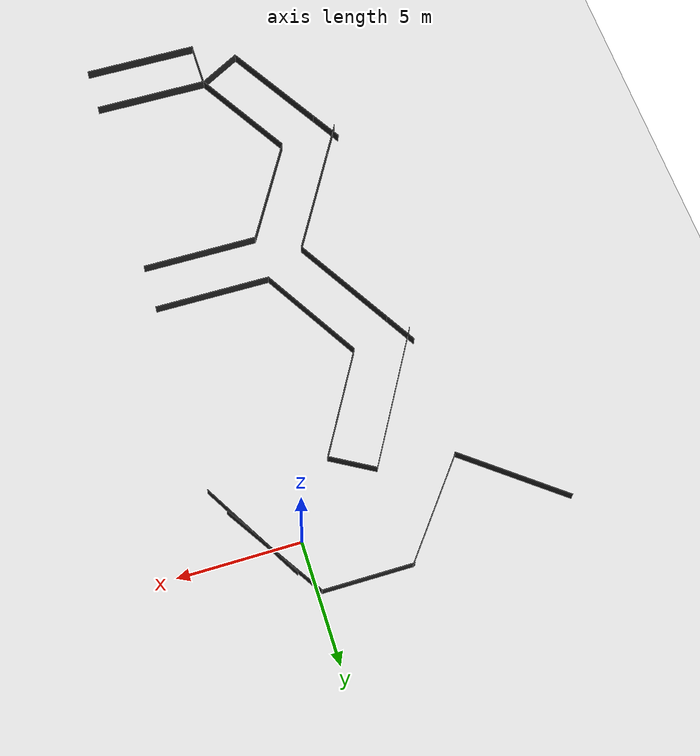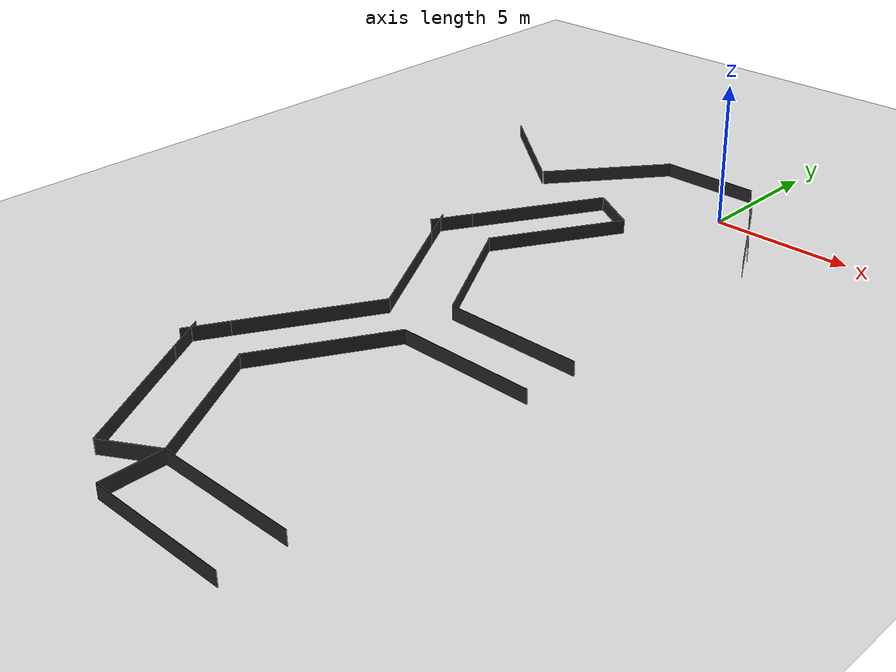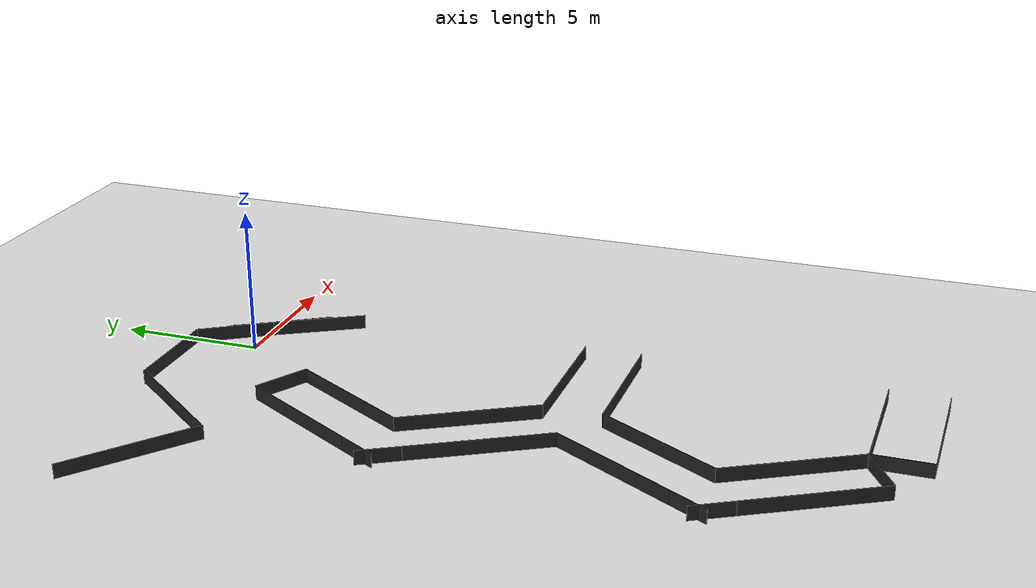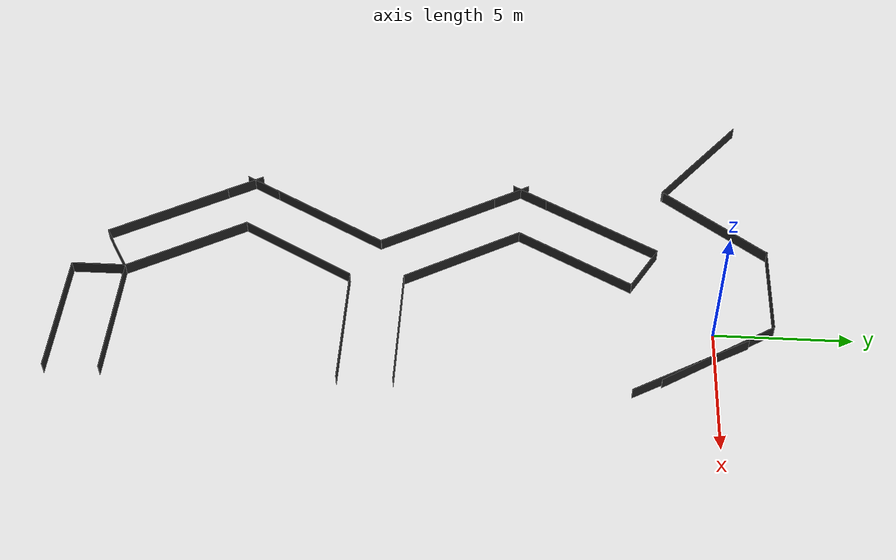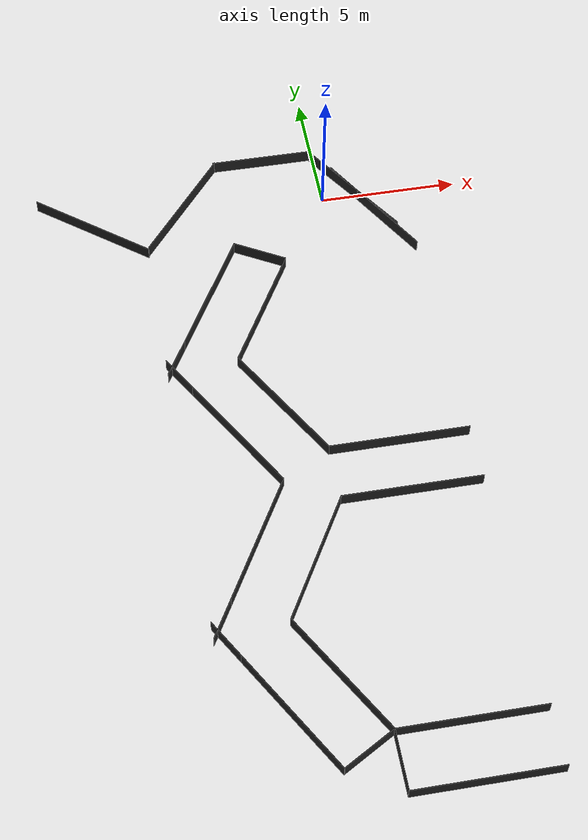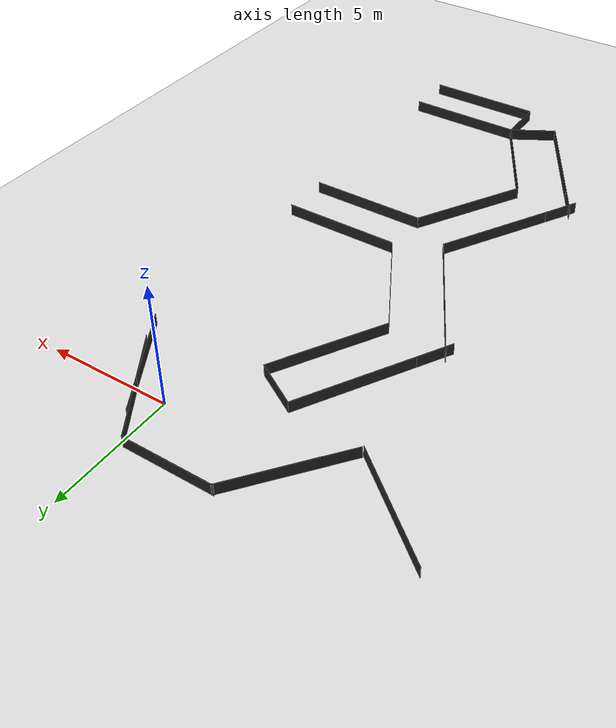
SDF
<sdf version="1.6">
 <world name="default">
  <model name="ground_plane">
   <static>1</static>
   <link name="link">
    <collision name="collision">
     <geometry><plane><normal>0 0 1</normal><size>100 100</size></plane></geometry>
     <surface><friction><ode><mu>100</mu><mu2>50</mu2></ode></friction></surface>
    </collision>
    <visual name="visual">
     <cast_shadows>0</cast_shadows>
     <geometry><plane><normal>0 0 1</normal><size>100 100</size></plane></geometry>
     <material>
      <script><uri>file://media/materials/scripts/gazebo.material</uri><name>Gazebo/White</name></script>
     </material>
    </visual>
   </link>
  </model>
  <model name="T_camber_2_2">
   <link name="link_clone_0_clone_clone">
    <inertial>
     <mass>1</mass>
     <inertia>
      <ixx>0.166667</ixx>
      <ixy>0</ixy>
      <ixz>0</ixz>
      <iyy>0.166667</iyy>
      <iyz>0</iyz>
      <izz>0.166667</izz>
     </inertia>
    </inertial>
    <pose>17.958 -12.4374 0 5e-06 -0 -2.0944</pose>
    <visual name="visual">
     <geometry><box><size>0.015 4.8453 0.5</size></box></geometry>
     <material>
      <script><name>Gazebo/FlatBlack</name><uri>file://media/materials/scripts/gazebo.material</uri></script>
      <shader type="pixel"><normal_map>__default__</normal_map></shader>
      <ambient>0.1 0.1 0.1 1</ambient>
      <diffuse>0.1 0.1 0.1 1</diffuse>
      <specular>0.01 0.01 0.01 1</specular>
      <emissive>0 0 0 1</emissive>
     </material>
    </visual>
    <visual name="visual_2">
     <geometry><box><size>0.015 4.8453 0.5</size></box></geometry>
     <material>
      <script><name>Gazebo/FlatBlack</name><uri>file://media/materials/scripts/gazebo.material</uri></script>
      <shader type="pixel"><normal_map>__default__</normal_map></shader>
      <ambient>0.1 0.1 0.1 1</ambient>
      <diffuse>0.1 0.1 0.1 1</diffuse>
      <specular>0.01 0.01 0.01 1</specular>
      <emissive>0 0 0 1</emissive>
     </material>
     <pose>2 0 0 0 -0 0</pose>
    </visual>
    <collision name="collision">
     <geometry><box><size>0.015 4.8453 0.5</size></box></geometry>
     <surface>
      <friction>
       <ode><mu>1</mu><mu2>1</mu2><fdir1>0 0 0</fdir1><slip1>0</slip1><slip2>0</slip2></ode>
       <torsional>
        <coefficient>1</coefficient>
        <patch_radius>0</patch_radius>
        <surface_radius>0</surface_radius>
        <use_patch_radius>1</use_patch_radius>
        <ode><slip>0</slip></ode>
       </torsional>
      </friction>
      <bounce><restitution_coefficient>0</restitution_coefficient><threshold>1e+06</threshold></bounce>
      <contact>
       <collide_without_contact>0</collide_without_contact>
       <collide_without_contact_bitmask>1</collide_without_contact_bitmask>
       <collide_bitmask>1</collide_bitmask>
       <ode>
        <soft_cfm>0</soft_cfm>
        <soft_erp>0.2</soft_erp>
        <kp>1e+13</kp>
        <kd>1</kd>
        <max_vel>0.01</max_vel>
        <min_depth>0</min_depth>
       </ode>
       <bullet>
        <split_impulse>1</split_impulse>
        <split_impulse_penetration_threshold>-0.01</split_impulse_penetration_threshold>
        <soft_cfm>0</soft_cfm>
        <soft_erp>0.2</soft_erp>
        <kp>1e+13</kp>
        <kd>1</kd>
       </bullet>
      </contact>
     </surface>
    </collision>
    <collision name="collision_1">
     <pose>2 0 0 0 -0 0</pose>
     <geometry><box><size>0.015 4.8453 0.5</size></box></geometry>
     <surface>
      <friction>
       <ode><mu>1</mu><mu2>1</mu2><fdir1>0 0 0</fdir1><slip1>0</slip1><slip2>0</slip2></ode>
       <torsional>
        <coefficient>1</coefficient>
        <patch_radius>0</patch_radius>
        <surface_radius>0</surface_radius>
        <use_patch_radius>1</use_patch_radius>
        <ode><slip>0</slip></ode>
       </torsional>
      </friction>
      <bounce><restitution_coefficient>0</restitution_coefficient><threshold>1e+06</threshold></bounce>
      <contact>
       <collide_without_contact>0</collide_without_contact>
       <collide_without_contact_bitmask>1</collide_without_contact_bitmask>
       <collide_bitmask>1</collide_bitmask>
       <ode>
        <soft_cfm>0</soft_cfm>
        <soft_erp>0.2</soft_erp>
        <kp>1e+13</kp>
        <kd>1</kd>
        <max_vel>0.01</max_vel>
        <min_depth>0</min_depth>
       </ode>
       <bullet>
        <split_impulse>1</split_impulse>
        <split_impulse_penetration_threshold>-0.01</split_impulse_penetration_threshold>
        <soft_cfm>0</soft_cfm>
        <soft_erp>0.2</soft_erp>
        <kp>1e+13</kp>
        <kd>1</kd>
       </bullet>
      </contact>
     </surface>
    </collision>
   </link>
   <link name="link_clone_0_clone_clone_0">
    <inertial>
     <mass>1</mass>
     <inertia>
      <ixx>0.166667</ixx>
      <ixy>0</ixy>
      <ixz>0</ixz>
      <iyy>0.166667</iyy>
      <iyz>0</iyz>
      <izz>0.166667</izz>
     </inertia>
    </inertial>
    <pose>7.58617 -12.4482 0 5e-06 -0 -2.0944</pose>
    <visual name="visual">
     <geometry><box><size>0.015 4.8453 0.5</size></box></geometry>
     <material>
      <script><name>Gazebo/FlatBlack</name><uri>file://media/materials/scripts/gazebo.material</uri></script>
      <shader type="pixel"><normal_map>__default__</normal_map></shader>
      <ambient>0.1 0.1 0.1 1</ambient>
      <diffuse>0.1 0.1 0.1 1</diffuse>
      <specular>0.01 0.01 0.01 1</specular>
      <emissive>0 0 0 1</emissive>
     </material>
    </visual>
    <visual name="visual_2">
     <geometry><box><size>0.015 4.8453 0.5</size></box></geometry>
     <material>
      <script><name>Gazebo/FlatBlack</name><uri>file://media/materials/scripts/gazebo.material</uri></script>
      <shader type="pixel"><normal_map>__default__</normal_map></shader>
      <ambient>0.1 0.1 0.1 1</ambient>
      <diffuse>0.1 0.1 0.1 1</diffuse>
      <specular>0.01 0.01 0.01 1</specular>
      <emissive>0 0 0 1</emissive>
     </material>
     <pose>2 0 0 0 -0 0</pose>
    </visual>
    <collision name="collision">
     <geometry><box><size>0.015 4.8453 0.5</size></box></geometry>
     <surface>
      <friction>
       <ode><mu>1</mu><mu2>1</mu2><fdir1>0 0 0</fdir1><slip1>0</slip1><slip2>0</slip2></ode>
       <torsional>
        <coefficient>1</coefficient>
        <patch_radius>0</patch_radius>
        <surface_radius>0</surface_radius>
        <use_patch_radius>1</use_patch_radius>
        <ode><slip>0</slip></ode>
       </torsional>
      </friction>
      <bounce><restitution_coefficient>0</restitution_coefficient><threshold>1e+06</threshold></bounce>
      <contact>
       <collide_without_contact>0</collide_without_contact>
       <collide_without_contact_bitmask>1</collide_without_contact_bitmask>
       <collide_bitmask>1</collide_bitmask>
       <ode>
        <soft_cfm>0</soft_cfm>
        <soft_erp>0.2</soft_erp>
        <kp>1e+13</kp>
        <kd>1</kd>
        <max_vel>0.01</max_vel>
        <min_depth>0</min_depth>
       </ode>
       <bullet>
        <split_impulse>1</split_impulse>
        <split_impulse_penetration_threshold>-0.01</split_impulse_penetration_threshold>
        <soft_cfm>0</soft_cfm>
        <soft_erp>0.2</soft_erp>
        <kp>1e+13</kp>
        <kd>1</kd>
       </bullet>
      </contact>
     </surface>
    </collision>
    <collision name="collision_1">
     <pose>2 0 0 0 -0 0</pose>
     <geometry><box><size>0.015 4.8453 0.5</size></box></geometry>
     <surface>
      <friction>
       <ode><mu>1</mu><mu2>1</mu2><fdir1>0 0 0</fdir1><slip1>0</slip1><slip2>0</slip2></ode>
       <torsional>
        <coefficient>1</coefficient>
        <patch_radius>0</patch_radius>
        <surface_radius>0</surface_radius>
        <use_patch_radius>1</use_patch_radius>
        <ode><slip>0</slip></ode>
       </torsional>
      </friction>
      <bounce><restitution_coefficient>0</restitution_coefficient><threshold>1e+06</threshold></bounce>
      <contact>
       <collide_without_contact>0</collide_without_contact>
       <collide_without_contact_bitmask>1</collide_without_contact_bitmask>
       <collide_bitmask>1</collide_bitmask>
       <ode>
        <soft_cfm>0</soft_cfm>
        <soft_erp>0.2</soft_erp>
        <kp>1e+13</kp>
        <kd>1</kd>
        <max_vel>0.01</max_vel>
        <min_depth>0</min_depth>
       </ode>
       <bullet>
        <split_impulse>1</split_impulse>
        <split_impulse_penetration_threshold>-0.01</split_impulse_penetration_threshold>
        <soft_cfm>0</soft_cfm>
        <soft_erp>0.2</soft_erp>
        <kp>1e+13</kp>
        <kd>1</kd>
       </bullet>
      </contact>
     </surface>
    </collision>
   </link>
   <link name="link_clone_0_clone_clone_1_clone_0_clone_clone">
    <inertial>
     <mass>1</mass>
     <inertia>
      <ixx>0.166667</ixx>
      <ixy>0</ixy>
      <ixz>0</ixz>
      <iyy>0.166667</iyy>
      <iyz>0</iyz>
      <izz>0.166667</izz>
     </inertia>
    </inertial>
    <pose>0.399085 -10.7308 9e-06 5e-06 -0 0</pose>
    <visual name="visual">
     <geometry><box><size>0.015 3.7053 0.5</size></box></geometry>
     <material>
      <script><name>Gazebo/FlatBlack</name><uri>file://media/materials/scripts/gazebo.material</uri></script>
      <shader type="pixel"><normal_map>__default__</normal_map></shader>
      <ambient>0.1 0.1 0.1 1</ambient>
      <diffuse>0.1 0.1 0.1 1</diffuse>
      <specular>0.01 0.01 0.01 1</specular>
      <emissive>0 0 0 1</emissive>
     </material>
     <pose>0 -0.57 0 0 -0 0</pose>
    </visual>
    <collision name="collision">
     <pose>0 -0.57 0 0 -0 0</pose>
     <geometry><box><size>0.015 3.7053 0.5</size></box></geometry>
     <surface>
      <friction>
       <ode><mu>1</mu><mu2>1</mu2><fdir1>0 0 0</fdir1><slip1>0</slip1><slip2>0</slip2></ode>
       <torsional>
        <coefficient>1</coefficient>
        <patch_radius>0</patch_radius>
        <surface_radius>0</surface_radius>
        <use_patch_radius>1</use_patch_radius>
        <ode><slip>0</slip></ode>
       </torsional>
      </friction>
      <bounce><restitution_coefficient>0</restitution_coefficient><threshold>1e+06</threshold></bounce>
      <contact>
       <collide_without_contact>0</collide_without_contact>
       <collide_without_contact_bitmask>1</collide_without_contact_bitmask>
       <collide_bitmask>1</collide_bitmask>
       <ode>
        <soft_cfm>0</soft_cfm>
        <soft_erp>0.2</soft_erp>
        <kp>1e+13</kp>
        <kd>1</kd>
        <max_vel>0.01</max_vel>
        <min_depth>0</min_depth>
       </ode>
       <bullet>
        <split_impulse>1</split_impulse>
        <split_impulse_penetration_threshold>-0.01</split_impulse_penetration_threshold>
        <soft_cfm>0</soft_cfm>
        <soft_erp>0.2</soft_erp>
        <kp>1e+13</kp>
        <kd>1</kd>
       </bullet>
      </contact>
     </surface>
    </collision>
   </link>
   <link name="link_clone_0_clone_clone_1_clone_0_clone_clone_0">
    <inertial>
     <mass>1</mass>
     <inertia>
      <ixx>0.166667</ixx>
      <ixy>0</ixy>
      <ixz>0</ixz>
      <iyy>0.166667</iyy>
      <iyz>0</iyz>
      <izz>0.166667</izz>
     </inertia>
    </inertial>
    <pose>2.92604 -7.85848 4e-06 2e-06 -4e-06 -1.00523</pose>
    <visual name="visual">
     <geometry><box><size>0.015 4.8453 0.5</size></box></geometry>
     <material>
      <script><name>Gazebo/FlatBlack</name><uri>file://media/materials/scripts/gazebo.material</uri></script>
      <shader type="pixel"><normal_map>__default__</normal_map></shader>
      <ambient>0.1 0.1 0.1 1</ambient>
      <diffuse>0.1 0.1 0.1 1</diffuse>
      <specular>0.01 0.01 0.01 1</specular>
      <emissive>0 0 0 1</emissive>
     </material>
     <pose>0 -0.57 0 0 -0 0</pose>
    </visual>
    <collision name="collision">
     <pose>0 -0.57 0 0 -0 0</pose>
     <geometry><box><size>0.015 4.8453 0.5</size></box></geometry>
     <surface>
      <friction>
       <ode><mu>1</mu><mu2>1</mu2><fdir1>0 0 0</fdir1><slip1>0</slip1><slip2>0</slip2></ode>
       <torsional>
        <coefficient>1</coefficient>
        <patch_radius>0</patch_radius>
        <surface_radius>0</surface_radius>
        <use_patch_radius>1</use_patch_radius>
        <ode><slip>0</slip></ode>
       </torsional>
      </friction>
      <bounce><restitution_coefficient>0</restitution_coefficient><threshold>1e+06</threshold></bounce>
      <contact>
       <collide_without_contact>0</collide_without_contact>
       <collide_without_contact_bitmask>1</collide_without_contact_bitmask>
       <collide_bitmask>1</collide_bitmask>
       <ode>
        <soft_cfm>0</soft_cfm>
        <soft_erp>0.2</soft_erp>
        <kp>1e+13</kp>
        <kd>1</kd>
        <max_vel>0.01</max_vel>
        <min_depth>0</min_depth>
       </ode>
       <bullet>
        <split_impulse>1</split_impulse>
        <split_impulse_penetration_threshold>-0.01</split_impulse_penetration_threshold>
        <soft_cfm>0</soft_cfm>
        <soft_erp>0.2</soft_erp>
        <kp>1e+13</kp>
        <kd>1</kd>
       </bullet>
      </contact>
     </surface>
    </collision>
   </link>
   <link name="link_clone_0_clone_clone_1_clone_0_clone_clone_0_clone_0">
    <inertial>
     <mass>1</mass>
     <inertia>
      <ixx>0.166667</ixx>
      <ixy>0</ixy>
      <ixz>0</ixz>
      <iyy>0.166667</iyy>
      <iyz>0</iyz>
      <izz>0.166667</izz>
     </inertia>
    </inertial>
    <pose>1.82488 -14.2158 7e-06 2e-06 -4e-06 0.900577</pose>
    <visual name="visual">
     <geometry><box><size>0.015 4.8453 0.5</size></box></geometry>
     <material>
      <script><name>Gazebo/FlatBlack</name><uri>file://media/materials/scripts/gazebo.material</uri></script>
      <shader type="pixel"><normal_map>__default__</normal_map></shader>
      <ambient>0.1 0.1 0.1 1</ambient>
      <diffuse>0.1 0.1 0.1 1</diffuse>
      <specular>0.01 0.01 0.01 1</specular>
      <emissive>0 0 0 1</emissive>
     </material>
     <pose>0 -0.57 0 0 -0 0</pose>
    </visual>
    <collision name="collision">
     <pose>0 -0.57 0 0 -0 0</pose>
     <geometry><box><size>0.015 4.8453 0.5</size></box></geometry>
     <surface>
      <friction>
       <ode><mu>1</mu><mu2>1</mu2><fdir1>0 0 0</fdir1><slip1>0</slip1><slip2>0</slip2></ode>
       <torsional>
        <coefficient>1</coefficient>
        <patch_radius>0</patch_radius>
        <surface_radius>0</surface_radius>
        <use_patch_radius>1</use_patch_radius>
        <ode><slip>0</slip></ode>
       </torsional>
      </friction>
      <bounce><restitution_coefficient>0</restitution_coefficient><threshold>1e+06</threshold></bounce>
      <contact>
       <collide_without_contact>0</collide_without_contact>
       <collide_without_contact_bitmask>1</collide_without_contact_bitmask>
       <collide_bitmask>1</collide_bitmask>
       <ode>
        <soft_cfm>0</soft_cfm>
        <soft_erp>0.2</soft_erp>
        <kp>1e+13</kp>
        <kd>1</kd>
        <max_vel>0.01</max_vel>
        <min_depth>0</min_depth>
       </ode>
       <bullet>
        <split_impulse>1</split_impulse>
        <split_impulse_penetration_threshold>-0.01</split_impulse_penetration_threshold>
        <soft_cfm>0</soft_cfm>
        <soft_erp>0.2</soft_erp>
        <kp>1e+13</kp>
        <kd>1</kd>
       </bullet>
      </contact>
     </surface>
    </collision>
   </link>
   <link name="link_clone_0_clone_clone_1_clone_0_clone_clone_0_clone_3_clone_0">
    <inertial>
     <mass>1</mass>
     <inertia>
      <ixx>0.166667</ixx>
      <ixy>0</ixy>
      <ixz>0</ixz>
      <iyy>0.166667</iyy>
      <iyz>0</iyz>
      <izz>0.166667</izz>
     </inertia>
    </inertial>
    <pose>3.0799 -17.5321 7e-06 -1e-06 4e-06 -0.667893</pose>
    <visual name="visual">
     <geometry><box><size>0.015 4.8453 0.5</size></box></geometry>
     <material>
      <script><name>Gazebo/FlatBlack</name><uri>file://media/materials/scripts/gazebo.material</uri></script>
      <shader type="pixel"><normal_map>__default__</normal_map></shader>
      <ambient>0.1 0.1 0.1 1</ambient>
      <diffuse>0.1 0.1 0.1 1</diffuse>
      <specular>0.01 0.01 0.01 1</specular>
      <emissive>0 0 0 1</emissive>
     </material>
     <pose>0 -0.57 0 0 -0 0</pose>
    </visual>
    <collision name="collision">
     <pose>0 -0.57 0 0 -0 0</pose>
     <geometry><box><size>0.015 4.8453 0.5</size></box></geometry>
     <surface>
      <friction>
       <ode><mu>1</mu><mu2>1</mu2><fdir1>0 0 0</fdir1><slip1>0</slip1><slip2>0</slip2></ode>
       <torsional>
        <coefficient>1</coefficient>
        <patch_radius>0</patch_radius>
        <surface_radius>0</surface_radius>
        <use_patch_radius>1</use_patch_radius>
        <ode><slip>0</slip></ode>
       </torsional>
      </friction>
      <bounce><restitution_coefficient>0</restitution_coefficient><threshold>1e+06</threshold></bounce>
      <contact>
       <collide_without_contact>0</collide_without_contact>
       <collide_without_contact_bitmask>1</collide_without_contact_bitmask>
       <collide_bitmask>1</collide_bitmask>
       <ode>
        <soft_cfm>0</soft_cfm>
        <soft_erp>0.2</soft_erp>
        <kp>1e+13</kp>
        <kd>1</kd>
        <max_vel>0.01</max_vel>
        <min_depth>0</min_depth>
       </ode>
       <bullet>
        <split_impulse>1</split_impulse>
        <split_impulse_penetration_threshold>-0.01</split_impulse_penetration_threshold>
        <soft_cfm>0</soft_cfm>
        <soft_erp>0.2</soft_erp>
        <kp>1e+13</kp>
        <kd>1</kd>
       </bullet>
      </contact>
     </surface>
    </collision>
   </link>
   <link name="link_clone_0_clone_clone_1_clone_0_clone_clone_1">
    <inertial>
     <mass>1</mass>
     <inertia>
      <ixx>0.166667</ixx>
      <ixy>0</ixy>
      <ixz>0</ixz>
      <iyy>0.166667</iyy>
      <iyz>0</iyz>
      <izz>0.166667</izz>
     </inertia>
    </inertial>
    <pose>2.94664 -7.86121 7e-06 5e-06 -0 2.0944</pose>
    <visual name="visual">
     <geometry><box><size>0.015 4.8453 0.5</size></box></geometry>
     <material>
      <script><name>Gazebo/FlatBlack</name><uri>file://media/materials/scripts/gazebo.material</uri></script>
      <shader type="pixel"><normal_map>__default__</normal_map></shader>
      <ambient>0.1 0.1 0.1 1</ambient>
      <diffuse>0.1 0.1 0.1 1</diffuse>
      <specular>0.01 0.01 0.01 1</specular>
      <emissive>0 0 0 1</emissive>
     </material>
     <pose>0 -0.57 0 0 -0 0</pose>
    </visual>
    <collision name="collision">
     <pose>0 -0.57 0 0 -0 0</pose>
     <geometry><box><size>0.015 4.8453 0.5</size></box></geometry>
     <surface>
      <friction>
       <ode><mu>1</mu><mu2>1</mu2><fdir1>0 0 0</fdir1><slip1>0</slip1><slip2>0</slip2></ode>
       <torsional>
        <coefficient>1</coefficient>
        <patch_radius>0</patch_radius>
        <surface_radius>0</surface_radius>
        <use_patch_radius>1</use_patch_radius>
        <ode><slip>0</slip></ode>
       </torsional>
      </friction>
      <bounce><restitution_coefficient>0</restitution_coefficient><threshold>1e+06</threshold></bounce>
      <contact>
       <collide_without_contact>0</collide_without_contact>
       <collide_without_contact_bitmask>1</collide_without_contact_bitmask>
       <collide_bitmask>1</collide_bitmask>
       <ode>
        <soft_cfm>0</soft_cfm>
        <soft_erp>0.2</soft_erp>
        <kp>1e+13</kp>
        <kd>1</kd>
        <max_vel>0.01</max_vel>
        <min_depth>0</min_depth>
       </ode>
       <bullet>
        <split_impulse>1</split_impulse>
        <split_impulse_penetration_threshold>-0.01</split_impulse_penetration_threshold>
        <soft_cfm>0</soft_cfm>
        <soft_erp>0.2</soft_erp>
        <kp>1e+13</kp>
        <kd>1</kd>
       </bullet>
      </contact>
     </surface>
    </collision>
   </link>
   <link name="link_clone_2">
    <inertial>
     <mass>1</mass>
     <inertia>
      <ixx>0.166667</ixx>
      <ixy>0</ixy>
      <ixz>0</ixz>
      <iyy>0.166667</iyy>
      <iyz>0</iyz>
      <izz>0.166667</izz>
     </inertia>
    </inertial>
    <pose>13.8692 -8.82128 0 0 -0 0</pose>
    <visual name="visual_2">
     <geometry><box><size>0.015 4.8453 0.5</size></box></geometry>
     <material>
      <script><name>Gazebo/FlatBlack</name><uri>file://media/materials/scripts/gazebo.material</uri></script>
      <shader type="pixel"><normal_map>__default__</normal_map></shader>
      <ambient>0.1 0.1 0.1 1</ambient>
      <diffuse>0.1 0.1 0.1 1</diffuse>
      <specular>0.01 0.01 0.01 1</specular>
      <emissive>0 0 0 1</emissive>
     </material>
     <pose>2 0 0 0 -0 0</pose>
    </visual>
    <visual name="visual">
     <geometry><box><size>0.015 4.8453 0.5</size></box></geometry>
     <material>
      <script><name>Gazebo/FlatBlack</name><uri>file://media/materials/scripts/gazebo.material</uri></script>
      <shader type="pixel"><normal_map>__default__</normal_map></shader>
      <ambient>0.1 0.1 0.1 1</ambient>
      <diffuse>0.1 0.1 0.1 1</diffuse>
      <specular>0.01 0.01 0.01 1</specular>
      <emissive>0 0 0 1</emissive>
     </material>
    </visual>
    <collision name="collision_1">
     <pose>2 0 0 0 -0 0</pose>
     <geometry><box><size>0.015 4.8453 0.5</size></box></geometry>
     <surface>
      <friction>
       <ode><mu>1</mu><mu2>1</mu2><fdir1>0 0 0</fdir1><slip1>0</slip1><slip2>0</slip2></ode>
       <torsional>
        <coefficient>1</coefficient>
        <patch_radius>0</patch_radius>
        <surface_radius>0</surface_radius>
        <use_patch_radius>1</use_patch_radius>
        <ode><slip>0</slip></ode>
       </torsional>
      </friction>
      <bounce><restitution_coefficient>0</restitution_coefficient><threshold>1e+06</threshold></bounce>
      <contact>
       <collide_without_contact>0</collide_without_contact>
       <collide_without_contact_bitmask>1</collide_without_contact_bitmask>
       <collide_bitmask>1</collide_bitmask>
       <ode>
        <soft_cfm>0</soft_cfm>
        <soft_erp>0.2</soft_erp>
        <kp>1e+13</kp>
        <kd>1</kd>
        <max_vel>0.01</max_vel>
        <min_depth>0</min_depth>
       </ode>
       <bullet>
        <split_impulse>1</split_impulse>
        <split_impulse_penetration_threshold>-0.01</split_impulse_penetration_threshold>
        <soft_cfm>0</soft_cfm>
        <soft_erp>0.2</soft_erp>
        <kp>1e+13</kp>
        <kd>1</kd>
       </bullet>
      </contact>
     </surface>
    </collision>
    <collision name="collision">
     <geometry><box><size>0.015 4.8453 0.5</size></box></geometry>
     <surface>
      <friction>
       <ode><mu>1</mu><mu2>1</mu2><fdir1>0 0 0</fdir1><slip1>0</slip1><slip2>0</slip2></ode>
       <torsional>
        <coefficient>1</coefficient>
        <patch_radius>0</patch_radius>
        <surface_radius>0</surface_radius>
        <use_patch_radius>1</use_patch_radius>
        <ode><slip>0</slip></ode>
       </torsional>
      </friction>
      <bounce><restitution_coefficient>0</restitution_coefficient><threshold>1e+06</threshold></bounce>
      <contact>
       <collide_without_contact>0</collide_without_contact>
       <collide_without_contact_bitmask>1</collide_without_contact_bitmask>
       <collide_bitmask>1</collide_bitmask>
       <ode>
        <soft_cfm>0</soft_cfm>
        <soft_erp>0.2</soft_erp>
        <kp>1e+13</kp>
        <kd>1</kd>
        <max_vel>0.01</max_vel>
        <min_depth>0</min_depth>
       </ode>
       <bullet>
        <split_impulse>1</split_impulse>
        <split_impulse_penetration_threshold>-0.01</split_impulse_penetration_threshold>
        <soft_cfm>0</soft_cfm>
        <soft_erp>0.2</soft_erp>
        <kp>1e+13</kp>
        <kd>1</kd>
       </bullet>
      </contact>
     </surface>
    </collision>
   </link>
   <link name="link_clone_2_clone">
    <inertial>
     <mass>1</mass>
     <inertia>
      <ixx>0.166667</ixx>
      <ixy>0</ixy>
      <ixz>0</ixz>
      <iyy>0.166667</iyy>
      <iyz>0</iyz>
      <izz>0.166667</izz>
     </inertia>
    </inertial>
    <pose>24.2456 -8.82146 0 0 -0 0</pose>
    <visual name="visual">
     <geometry><box><size>0.015 4.8453 0.5</size></box></geometry>
     <material>
      <script><name>Gazebo/FlatBlack</name><uri>file://media/materials/scripts/gazebo.material</uri></script>
      <shader type="pixel"><normal_map>__default__</normal_map></shader>
      <ambient>0.1 0.1 0.1 1</ambient>
      <diffuse>0.1 0.1 0.1 1</diffuse>
      <specular>0.01 0.01 0.01 1</specular>
      <emissive>0 0 0 1</emissive>
     </material>
    </visual>
    <visual name="visual_2">
     <geometry><box><size>0.015 4.8453 0.5</size></box></geometry>
     <material>
      <script><name>Gazebo/FlatBlack</name><uri>file://media/materials/scripts/gazebo.material</uri></script>
      <shader type="pixel"><normal_map>__default__</normal_map></shader>
      <ambient>0.1 0.1 0.1 1</ambient>
      <diffuse>0.1 0.1 0.1 1</diffuse>
      <specular>0.01 0.01 0.01 1</specular>
      <emissive>0 0 0 1</emissive>
     </material>
     <pose>2 0 0 0 -0 0</pose>
    </visual>
    <collision name="collision_1">
     <pose>2 0 0 0 -0 0</pose>
     <geometry><box><size>0.015 4.8453 0.5</size></box></geometry>
     <surface>
      <friction>
       <ode><mu>1</mu><mu2>1</mu2><fdir1>0 0 0</fdir1><slip1>0</slip1><slip2>0</slip2></ode>
       <torsional>
        <coefficient>1</coefficient>
        <patch_radius>0</patch_radius>
        <surface_radius>0</surface_radius>
        <use_patch_radius>1</use_patch_radius>
        <ode><slip>0</slip></ode>
       </torsional>
      </friction>
      <bounce><restitution_coefficient>0</restitution_coefficient><threshold>1e+06</threshold></bounce>
      <contact>
       <collide_without_contact>0</collide_without_contact>
       <collide_without_contact_bitmask>1</collide_without_contact_bitmask>
       <collide_bitmask>1</collide_bitmask>
       <ode>
        <soft_cfm>0</soft_cfm>
        <soft_erp>0.2</soft_erp>
        <kp>1e+13</kp>
        <kd>1</kd>
        <max_vel>0.01</max_vel>
        <min_depth>0</min_depth>
       </ode>
       <bullet>
        <split_impulse>1</split_impulse>
        <split_impulse_penetration_threshold>-0.01</split_impulse_penetration_threshold>
        <soft_cfm>0</soft_cfm>
        <soft_erp>0.2</soft_erp>
        <kp>1e+13</kp>
        <kd>1</kd>
       </bullet>
      </contact>
     </surface>
    </collision>
    <collision name="collision">
     <geometry><box><size>0.015 4.8453 0.5</size></box></geometry>
     <surface>
      <friction>
       <ode><mu>1</mu><mu2>1</mu2><fdir1>0 0 0</fdir1><slip1>0</slip1><slip2>0</slip2></ode>
       <torsional>
        <coefficient>1</coefficient>
        <patch_radius>0</patch_radius>
        <surface_radius>0</surface_radius>
        <use_patch_radius>1</use_patch_radius>
        <ode><slip>0</slip></ode>
       </torsional>
      </friction>
      <bounce><restitution_coefficient>0</restitution_coefficient><threshold>1e+06</threshold></bounce>
      <contact>
       <collide_without_contact>0</collide_without_contact>
       <collide_without_contact_bitmask>1</collide_without_contact_bitmask>
       <collide_bitmask>1</collide_bitmask>
       <ode>
        <soft_cfm>0</soft_cfm>
        <soft_erp>0.2</soft_erp>
        <kp>1e+13</kp>
        <kd>1</kd>
        <max_vel>0.01</max_vel>
        <min_depth>0</min_depth>
       </ode>
       <bullet>
        <split_impulse>1</split_impulse>
        <split_impulse_penetration_threshold>-0.01</split_impulse_penetration_threshold>
        <soft_cfm>0</soft_cfm>
        <soft_erp>0.2</soft_erp>
        <kp>1e+13</kp>
        <kd>1</kd>
       </bullet>
      </contact>
     </surface>
    </collision>
   </link>
   <link name="link_clone_clone_clone">
    <inertial>
     <mass>1</mass>
     <inertia>
      <ixx>0.166667</ixx>
      <ixy>0</ixy>
      <ixz>0</ixz>
      <iyy>0.166667</iyy>
      <iyz>0</iyz>
      <izz>0.166667</izz>
     </inertia>
    </inertial>
    <pose>12.7749 -14.1805 0 5e-06 -0 2.0944</pose>
    <visual name="visual">
     <geometry><box><size>0.015 4.8453 0.5</size></box></geometry>
     <material>
      <script><name>Gazebo/FlatBlack</name><uri>file://media/materials/scripts/gazebo.material</uri></script>
      <shader type="pixel"><normal_map>__default__</normal_map></shader>
      <ambient>0.1 0.1 0.1 1</ambient>
      <diffuse>0.1 0.1 0.1 1</diffuse>
      <specular>0.01 0.01 0.01 1</specular>
      <emissive>0 0 0 1</emissive>
     </material>
    </visual>
    <visual name="visual_2">
     <geometry><box><size>0.015 4.8453 0.5</size></box></geometry>
     <material>
      <script><name>Gazebo/FlatBlack</name><uri>file://media/materials/scripts/gazebo.material</uri></script>
      <shader type="pixel"><normal_map>__default__</normal_map></shader>
      <ambient>0.1 0.1 0.1 1</ambient>
      <diffuse>0.1 0.1 0.1 1</diffuse>
      <specular>0.01 0.01 0.01 1</specular>
      <emissive>0 0 0 1</emissive>
     </material>
     <pose>2 0 0 0 -0 0</pose>
    </visual>
    <collision name="collision">
     <geometry><box><size>0.015 4.8453 0.5</size></box></geometry>
     <surface>
      <friction>
       <ode><mu>1</mu><mu2>1</mu2><fdir1>0 0 0</fdir1><slip1>0</slip1><slip2>0</slip2></ode>
       <torsional>
        <coefficient>1</coefficient>
        <patch_radius>0</patch_radius>
        <surface_radius>0</surface_radius>
        <use_patch_radius>1</use_patch_radius>
        <ode><slip>0</slip></ode>
       </torsional>
      </friction>
      <bounce><restitution_coefficient>0</restitution_coefficient><threshold>1e+06</threshold></bounce>
      <contact>
       <collide_without_contact>0</collide_without_contact>
       <collide_without_contact_bitmask>1</collide_without_contact_bitmask>
       <collide_bitmask>1</collide_bitmask>
       <ode>
        <soft_cfm>0</soft_cfm>
        <soft_erp>0.2</soft_erp>
        <kp>1e+13</kp>
        <kd>1</kd>
        <max_vel>0.01</max_vel>
        <min_depth>0</min_depth>
       </ode>
       <bullet>
        <split_impulse>1</split_impulse>
        <split_impulse_penetration_threshold>-0.01</split_impulse_penetration_threshold>
        <soft_cfm>0</soft_cfm>
        <soft_erp>0.2</soft_erp>
        <kp>1e+13</kp>
        <kd>1</kd>
       </bullet>
      </contact>
     </surface>
    </collision>
    <collision name="collision_1">
     <pose>2 0 0 0 -0 0</pose>
     <geometry><box><size>0.015 4.8453 0.5</size></box></geometry>
     <surface>
      <friction>
       <ode><mu>1</mu><mu2>1</mu2><fdir1>0 0 0</fdir1><slip1>0</slip1><slip2>0</slip2></ode>
       <torsional>
        <coefficient>1</coefficient>
        <patch_radius>0</patch_radius>
        <surface_radius>0</surface_radius>
        <use_patch_radius>1</use_patch_radius>
        <ode><slip>0</slip></ode>
       </torsional>
      </friction>
      <bounce><restitution_coefficient>0</restitution_coefficient><threshold>1e+06</threshold></bounce>
      <contact>
       <collide_without_contact>0</collide_without_contact>
       <collide_without_contact_bitmask>1</collide_without_contact_bitmask>
       <collide_bitmask>1</collide_bitmask>
       <ode>
        <soft_cfm>0</soft_cfm>
        <soft_erp>0.2</soft_erp>
        <kp>1e+13</kp>
        <kd>1</kd>
        <max_vel>0.01</max_vel>
        <min_depth>0</min_depth>
       </ode>
       <bullet>
        <split_impulse>1</split_impulse>
        <split_impulse_penetration_threshold>-0.01</split_impulse_penetration_threshold>
        <soft_cfm>0</soft_cfm>
        <soft_erp>0.2</soft_erp>
        <kp>1e+13</kp>
        <kd>1</kd>
       </bullet>
      </contact>
     </surface>
    </collision>
   </link>
   <link name="link_clone_clone_clone_clone">
    <inertial>
     <mass>1</mass>
     <inertia>
      <ixx>0.166667</ixx>
      <ixy>0</ixy>
      <ixz>0</ixz>
      <iyy>0.166667</iyy>
      <iyz>0</iyz>
      <izz>0.166667</izz>
     </inertia>
    </inertial>
    <pose>4.99102 -12.1127 -1e-06 4e-06 -2e-06 -0.5236</pose>
    <visual name="visual">
     <geometry><box><size>0.015 2 0.5</size></box></geometry>
     <material>
      <script><name>Gazebo/FlatBlack</name><uri>file://media/materials/scripts/gazebo.material</uri></script>
      <shader type="pixel"><normal_map>__default__</normal_map></shader>
      <ambient>0.1 0.1 0.1 1</ambient>
      <diffuse>0.1 0.1 0.1 1</diffuse>
      <specular>0.01 0.01 0.01 1</specular>
      <emissive>0 0 0 1</emissive>
     </material>
    </visual>
    <collision name="collision">
     <geometry><box><size>0.015 2 0.5</size></box></geometry>
     <surface>
      <friction>
       <ode><mu>1</mu><mu2>1</mu2><fdir1>0 0 0</fdir1><slip1>0</slip1><slip2>0</slip2></ode>
       <torsional>
        <coefficient>1</coefficient>
        <patch_radius>0</patch_radius>
        <surface_radius>0</surface_radius>
        <use_patch_radius>1</use_patch_radius>
        <ode><slip>0</slip></ode>
       </torsional>
      </friction>
      <bounce><restitution_coefficient>0</restitution_coefficient><threshold>1e+06</threshold></bounce>
      <contact>
       <collide_without_contact>0</collide_without_contact>
       <collide_without_contact_bitmask>1</collide_without_contact_bitmask>
       <collide_bitmask>1</collide_bitmask>
       <ode>
        <soft_cfm>0</soft_cfm>
        <soft_erp>0.2</soft_erp>
        <kp>1e+13</kp>
        <kd>1</kd>
        <max_vel>0.01</max_vel>
        <min_depth>0</min_depth>
       </ode>
       <bullet>
        <split_impulse>1</split_impulse>
        <split_impulse_penetration_threshold>-0.01</split_impulse_penetration_threshold>
        <soft_cfm>0</soft_cfm>
        <soft_erp>0.2</soft_erp>
        <kp>1e+13</kp>
        <kd>1</kd>
       </bullet>
      </contact>
     </surface>
    </collision>
   </link>
   <link name="link_clone_clone_clone_clone_0">
    <inertial>
     <mass>1</mass>
     <inertia>
      <ixx>0.166667</ixx>
      <ixy>0</ixy>
      <ixz>0</ixz>
      <iyy>0.166667</iyy>
      <iyz>0</iyz>
      <izz>0.166667</izz>
     </inertia>
    </inertial>
    <pose>10.0368 -15.7612 -9e-06 5e-06 -0 2.0944</pose>
    <visual name="visual">
     <geometry><box><size>0.015 1.5 0.5</size></box></geometry>
     <material>
      <script><name>Gazebo/FlatBlack</name><uri>file://media/materials/scripts/gazebo.material</uri></script>
      <shader type="pixel"><normal_map>__default__</normal_map></shader>
      <ambient>0.1 0.1 0.1 1</ambient>
      <diffuse>0.1 0.1 0.1 1</diffuse>
      <specular>0.01 0.01 0.01 1</specular>
      <emissive>0 0 0 1</emissive>
     </material>
    </visual>
    <visual name="ModelPreview_9::link_clone_clone_clone_clone_0::visual_2">
     <geometry><box><size>0.015 1.5 0.5</size></box></geometry>
     <material>
      <script><name>Gazebo/FlatBlack</name><uri>file://media/materials/scripts/gazebo.material</uri></script>
      <shader type="pixel"><normal_map>__default__</normal_map></shader>
      <ambient>0.1 0.1 0.1 1</ambient>
      <diffuse>0.1 0.1 0.1 1</diffuse>
      <specular>0.01 0.01 0.01 1</specular>
      <emissive>0 0 0 1</emissive>
     </material>
     <pose>0.3525 0.615 0 0 -0 2.0944</pose>
    </visual>
    <collision name="collision">
     <geometry><box><size>0.015 1.5 0.5</size></box></geometry>
     <surface>
      <friction>
       <ode><mu>1</mu><mu2>1</mu2><fdir1>0 0 0</fdir1><slip1>0</slip1><slip2>0</slip2></ode>
       <torsional>
        <coefficient>1</coefficient>
        <patch_radius>0</patch_radius>
        <surface_radius>0</surface_radius>
        <use_patch_radius>1</use_patch_radius>
        <ode><slip>0</slip></ode>
       </torsional>
      </friction>
      <bounce><restitution_coefficient>0</restitution_coefficient><threshold>1e+06</threshold></bounce>
      <contact>
       <collide_without_contact>0</collide_without_contact>
       <collide_without_contact_bitmask>1</collide_without_contact_bitmask>
       <collide_bitmask>1</collide_bitmask>
       <ode>
        <soft_cfm>0</soft_cfm>
        <soft_erp>0.2</soft_erp>
        <kp>1e+13</kp>
        <kd>1</kd>
        <max_vel>0.01</max_vel>
        <min_depth>0</min_depth>
       </ode>
       <bullet>
        <split_impulse>1</split_impulse>
        <split_impulse_penetration_threshold>-0.01</split_impulse_penetration_threshold>
        <soft_cfm>0</soft_cfm>
        <soft_erp>0.2</soft_erp>
        <kp>1e+13</kp>
        <kd>1</kd>
       </bullet>
      </contact>
     </surface>
    </collision>
    <collision name="collision_2">
     <pose>0.3525 0.615 0 0 -0 2.0944</pose>
     <geometry><box><size>0.015 1.5 0.5</size></box></geometry>
     <surface>
      <friction>
       <ode><mu>1</mu><mu2>1</mu2><fdir1>0 0 0</fdir1><slip1>0</slip1><slip2>0</slip2></ode>
       <torsional>
        <coefficient>1</coefficient>
        <patch_radius>0</patch_radius>
        <surface_radius>0</surface_radius>
        <use_patch_radius>1</use_patch_radius>
        <ode><slip>0</slip></ode>
       </torsional>
      </friction>
      <bounce><restitution_coefficient>0</restitution_coefficient><threshold>1e+06</threshold></bounce>
      <contact>
       <collide_without_contact>0</collide_without_contact>
       <collide_without_contact_bitmask>1</collide_without_contact_bitmask>
       <collide_bitmask>1</collide_bitmask>
       <ode>
        <soft_cfm>0</soft_cfm>
        <soft_erp>0.2</soft_erp>
        <kp>1e+13</kp>
        <kd>1</kd>
        <max_vel>0.01</max_vel>
        <min_depth>0</min_depth>
       </ode>
       <bullet>
        <split_impulse>1</split_impulse>
        <split_impulse_penetration_threshold>-0.01</split_impulse_penetration_threshold>
        <soft_cfm>0</soft_cfm>
        <soft_erp>0.2</soft_erp>
        <kp>1e+13</kp>
        <kd>1</kd>
       </bullet>
      </contact>
     </surface>
    </collision>
   </link>
   <link name="link_clone_clone_clone_clone_0_clone">
    <inertial>
     <mass>1</mass>
     <inertia>
      <ixx>0.166667</ixx>
      <ixy>0</ixy>
      <ixz>0</ixz>
      <iyy>0.166667</iyy>
      <iyz>0</iyz>
      <izz>0.166667</izz>
     </inertia>
    </inertial>
    <pose>20.4096 -15.7503 -9e-06 5e-06 -0 2.0944</pose>
    <visual name="visual">
     <geometry><box><size>0.015 1.5 0.5</size></box></geometry>
     <material>
      <script><name>Gazebo/FlatBlack</name><uri>file://media/materials/scripts/gazebo.material</uri></script>
      <shader type="pixel"><normal_map>__default__</normal_map></shader>
      <ambient>0.1 0.1 0.1 1</ambient>
      <diffuse>0.1 0.1 0.1 1</diffuse>
      <specular>0.01 0.01 0.01 1</specular>
      <emissive>0 0 0 1</emissive>
     </material>
    </visual>
    <visual name="visual_2">
     <geometry><box><size>0.015 1.5 0.5</size></box></geometry>
     <material>
      <script><name>Gazebo/FlatBlack</name><uri>file://media/materials/scripts/gazebo.material</uri></script>
      <shader type="pixel"><normal_map>__default__</normal_map></shader>
      <ambient>0.1 0.1 0.1 1</ambient>
      <diffuse>0.1 0.1 0.1 1</diffuse>
      <specular>0.01 0.01 0.01 1</specular>
      <emissive>0 0 0 1</emissive>
     </material>
     <pose>0.3525 0.615 0 0 -0 2.0944</pose>
    </visual>
    <collision name="collision_2">
     <pose>0.3525 0.615 0 0 -0 2.0944</pose>
     <geometry><box><size>0.015 1.5 0.5</size></box></geometry>
     <surface>
      <friction>
       <ode><mu>1</mu><mu2>1</mu2><fdir1>0 0 0</fdir1><slip1>0</slip1><slip2>0</slip2></ode>
       <torsional>
        <coefficient>1</coefficient>
        <patch_radius>0</patch_radius>
        <surface_radius>0</surface_radius>
        <use_patch_radius>1</use_patch_radius>
        <ode><slip>0</slip></ode>
       </torsional>
      </friction>
      <bounce><restitution_coefficient>0</restitution_coefficient><threshold>1e+06</threshold></bounce>
      <contact>
       <collide_without_contact>0</collide_without_contact>
       <collide_without_contact_bitmask>1</collide_without_contact_bitmask>
       <collide_bitmask>1</collide_bitmask>
       <ode>
        <soft_cfm>0</soft_cfm>
        <soft_erp>0.2</soft_erp>
        <kp>1e+13</kp>
        <kd>1</kd>
        <max_vel>0.01</max_vel>
        <min_depth>0</min_depth>
       </ode>
       <bullet>
        <split_impulse>1</split_impulse>
        <split_impulse_penetration_threshold>-0.01</split_impulse_penetration_threshold>
        <soft_cfm>0</soft_cfm>
        <soft_erp>0.2</soft_erp>
        <kp>1e+13</kp>
        <kd>1</kd>
       </bullet>
      </contact>
     </surface>
    </collision>
    <collision name="collision">
     <geometry><box><size>0.015 1.5 0.5</size></box></geometry>
     <surface>
      <friction>
       <ode><mu>1</mu><mu2>1</mu2><fdir1>0 0 0</fdir1><slip1>0</slip1><slip2>0</slip2></ode>
       <torsional>
        <coefficient>1</coefficient>
        <patch_radius>0</patch_radius>
        <surface_radius>0</surface_radius>
        <use_patch_radius>1</use_patch_radius>
        <ode><slip>0</slip></ode>
       </torsional>
      </friction>
      <bounce><restitution_coefficient>0</restitution_coefficient><threshold>1e+06</threshold></bounce>
      <contact>
       <collide_without_contact>0</collide_without_contact>
       <collide_without_contact_bitmask>1</collide_without_contact_bitmask>
       <collide_bitmask>1</collide_bitmask>
       <ode>
        <soft_cfm>0</soft_cfm>
        <soft_erp>0.2</soft_erp>
        <kp>1e+13</kp>
        <kd>1</kd>
        <max_vel>0.01</max_vel>
        <min_depth>0</min_depth>
       </ode>
       <bullet>
        <split_impulse>1</split_impulse>
        <split_impulse_penetration_threshold>-0.01</split_impulse_penetration_threshold>
        <soft_cfm>0</soft_cfm>
        <soft_erp>0.2</soft_erp>
        <kp>1e+13</kp>
        <kd>1</kd>
       </bullet>
      </contact>
     </surface>
    </collision>
   </link>
   <link name="link_clone_clone_clone_clone_1">
    <inertial>
     <mass>1</mass>
     <inertia>
      <ixx>0.166667</ixx>
      <ixy>0</ixy>
      <ixz>0</ixz>
      <iyy>0.166667</iyy>
      <iyz>0</iyz>
      <izz>0.166667</izz>
     </inertia>
    </inertial>
    <pose>23.1465 -14.1698 0 5e-06 -0 2.0944</pose>
    <visual name="visual">
     <geometry><box><size>0.015 4.8453 0.5</size></box></geometry>
     <material>
      <script><name>Gazebo/FlatBlack</name><uri>file://media/materials/scripts/gazebo.material</uri></script>
      <shader type="pixel"><normal_map>__default__</normal_map></shader>
      <ambient>0.1 0.1 0.1 1</ambient>
      <diffuse>0.1 0.1 0.1 1</diffuse>
      <specular>0.01 0.01 0.01 1</specular>
      <emissive>0 0 0 1</emissive>
     </material>
    </visual>
    <visual name="visual_2">
     <geometry><box><size>0.015 4.8453 0.5</size></box></geometry>
     <material>
      <script><name>Gazebo/FlatBlack</name><uri>file://media/materials/scripts/gazebo.material</uri></script>
      <shader type="pixel"><normal_map>__default__</normal_map></shader>
      <ambient>0.1 0.1 0.1 1</ambient>
      <diffuse>0.1 0.1 0.1 1</diffuse>
      <specular>0.01 0.01 0.01 1</specular>
      <emissive>0 0 0 1</emissive>
     </material>
     <pose>2 0 0 0 -0 0</pose>
    </visual>
    <collision name="collision">
     <geometry><box><size>0.015 4.8453 0.5</size></box></geometry>
     <surface>
      <friction>
       <ode><mu>1</mu><mu2>1</mu2><fdir1>0 0 0</fdir1><slip1>0</slip1><slip2>0</slip2></ode>
       <torsional>
        <coefficient>1</coefficient>
        <patch_radius>0</patch_radius>
        <surface_radius>0</surface_radius>
        <use_patch_radius>1</use_patch_radius>
        <ode><slip>0</slip></ode>
       </torsional>
      </friction>
      <bounce><restitution_coefficient>0</restitution_coefficient><threshold>1e+06</threshold></bounce>
      <contact>
       <collide_without_contact>0</collide_without_contact>
       <collide_without_contact_bitmask>1</collide_without_contact_bitmask>
       <collide_bitmask>1</collide_bitmask>
       <ode>
        <soft_cfm>0</soft_cfm>
        <soft_erp>0.2</soft_erp>
        <kp>1e+13</kp>
        <kd>1</kd>
        <max_vel>0.01</max_vel>
        <min_depth>0</min_depth>
       </ode>
       <bullet>
        <split_impulse>1</split_impulse>
        <split_impulse_penetration_threshold>-0.01</split_impulse_penetration_threshold>
        <soft_cfm>0</soft_cfm>
        <soft_erp>0.2</soft_erp>
        <kp>1e+13</kp>
        <kd>1</kd>
       </bullet>
      </contact>
     </surface>
    </collision>
    <collision name="collision_1">
     <pose>2 0 0 0 -0 0</pose>
     <geometry><box><size>0.015 4.8453 0.5</size></box></geometry>
     <surface>
      <friction>
       <ode><mu>1</mu><mu2>1</mu2><fdir1>0 0 0</fdir1><slip1>0</slip1><slip2>0</slip2></ode>
       <torsional>
        <coefficient>1</coefficient>
        <patch_radius>0</patch_radius>
        <surface_radius>0</surface_radius>
        <use_patch_radius>1</use_patch_radius>
        <ode><slip>0</slip></ode>
       </torsional>
      </friction>
      <bounce><restitution_coefficient>0</restitution_coefficient><threshold>1e+06</threshold></bounce>
      <contact>
       <collide_without_contact>0</collide_without_contact>
       <collide_without_contact_bitmask>1</collide_without_contact_bitmask>
       <collide_bitmask>1</collide_bitmask>
       <ode>
        <soft_cfm>0</soft_cfm>
        <soft_erp>0.2</soft_erp>
        <kp>1e+13</kp>
        <kd>1</kd>
        <max_vel>0.01</max_vel>
        <min_depth>0</min_depth>
       </ode>
       <bullet>
        <split_impulse>1</split_impulse>
        <split_impulse_penetration_threshold>-0.01</split_impulse_penetration_threshold>
        <soft_cfm>0</soft_cfm>
        <soft_erp>0.2</soft_erp>
        <kp>1e+13</kp>
        <kd>1</kd>
       </bullet>
      </contact>
     </surface>
    </collision>
   </link>
   <link name="link_clone_clone_clone_clone_clone">
    <inertial>
     <mass>1</mass>
     <inertia>
      <ixx>0.166667</ixx>
      <ixy>0</ixy>
      <ixz>0</ixz>
      <iyy>0.166667</iyy>
      <iyz>0</iyz>
      <izz>0.166667</izz>
     </inertia>
    </inertial>
    <pose>24.7374 -12.098 -1e-06 0 -4e-06 0.5236</pose>
    <visual name="visual">
     <geometry><box><size>0.015 2 0.5</size></box></geometry>
     <material>
      <script><name>Gazebo/FlatBlack</name><uri>file://media/materials/scripts/gazebo.material</uri></script>
      <shader type="pixel"><normal_map>__default__</normal_map></shader>
      <ambient>0.1 0.1 0.1 1</ambient>
      <diffuse>0.1 0.1 0.1 1</diffuse>
      <specular>0.01 0.01 0.01 1</specular>
      <emissive>0 0 0 1</emissive>
     </material>
    </visual>
    <collision name="collision">
     <geometry><box><size>0.015 2 0.5</size></box></geometry>
     <surface>
      <friction>
       <ode><mu>1</mu><mu2>1</mu2><fdir1>0 0 0</fdir1><slip1>0</slip1><slip2>0</slip2></ode>
       <torsional>
        <coefficient>1</coefficient>
        <patch_radius>0</patch_radius>
        <surface_radius>0</surface_radius>
        <use_patch_radius>1</use_patch_radius>
        <ode><slip>0</slip></ode>
       </torsional>
      </friction>
      <bounce><restitution_coefficient>0</restitution_coefficient><threshold>1e+06</threshold></bounce>
      <contact>
       <collide_without_contact>0</collide_without_contact>
       <collide_without_contact_bitmask>1</collide_without_contact_bitmask>
       <collide_bitmask>1</collide_bitmask>
       <ode>
        <soft_cfm>0</soft_cfm>
        <soft_erp>0.2</soft_erp>
        <kp>1e+13</kp>
        <kd>1</kd>
        <max_vel>0.01</max_vel>
        <min_depth>0</min_depth>
       </ode>
       <bullet>
        <split_impulse>1</split_impulse>
        <split_impulse_penetration_threshold>-0.01</split_impulse_penetration_threshold>
        <soft_cfm>0</soft_cfm>
        <soft_erp>0.2</soft_erp>
        <kp>1e+13</kp>
        <kd>1</kd>
       </bullet>
      </contact>
     </surface>
    </collision>
   </link>
   <link name="link_clone_clone_clone_clone_clone_clone">
    <inertial>
     <mass>1</mass>
     <inertia>
      <ixx>0.166667</ixx>
      <ixy>0</ixy>
      <ixz>0</ixz>
      <iyy>0.166667</iyy>
      <iyz>0</iyz>
      <izz>0.166667</izz>
     </inertia>
    </inertial>
    <pose>25.2493 -11.2357 -1e-06 -0 -4e-06 1.5708</pose>
    <visual name="visual">
     <geometry><box><size>0.015 2 0.5</size></box></geometry>
     <material>
      <script><name>Gazebo/FlatBlack</name><uri>file://media/materials/scripts/gazebo.material</uri></script>
      <shader type="pixel"><normal_map>__default__</normal_map></shader>
      <ambient>0.1 0.1 0.1 1</ambient>
      <diffuse>0.1 0.1 0.1 1</diffuse>
      <specular>0.01 0.01 0.01 1</specular>
      <emissive>0 0 0 1</emissive>
     </material>
    </visual>
    <collision name="collision">
     <geometry><box><size>0.015 2 0.5</size></box></geometry>
     <surface>
      <friction>
       <ode><mu>1</mu><mu2>1</mu2><fdir1>0 0 0</fdir1><slip1>0</slip1><slip2>0</slip2></ode>
       <torsional>
        <coefficient>1</coefficient>
        <patch_radius>0</patch_radius>
        <surface_radius>0</surface_radius>
        <use_patch_radius>1</use_patch_radius>
        <ode><slip>0</slip></ode>
       </torsional>
      </friction>
      <bounce><restitution_coefficient>0</restitution_coefficient><threshold>1e+06</threshold></bounce>
      <contact>
       <collide_without_contact>0</collide_without_contact>
       <collide_without_contact_bitmask>1</collide_without_contact_bitmask>
       <collide_bitmask>1</collide_bitmask>
       <ode>
        <soft_cfm>0</soft_cfm>
        <soft_erp>0.2</soft_erp>
        <kp>1e+13</kp>
        <kd>1</kd>
        <max_vel>0.01</max_vel>
        <min_depth>0</min_depth>
       </ode>
       <bullet>
        <split_impulse>1</split_impulse>
        <split_impulse_penetration_threshold>-0.01</split_impulse_penetration_threshold>
        <soft_cfm>0</soft_cfm>
        <soft_erp>0.2</soft_erp>
        <kp>1e+13</kp>
        <kd>1</kd>
       </bullet>
      </contact>
     </surface>
    </collision>
   </link>
   <static>1</static>
   <pose>9.3097 2.55688 0.225931 0 0 -1.5708</pose>
  </model>
 </world>
</sdf>
